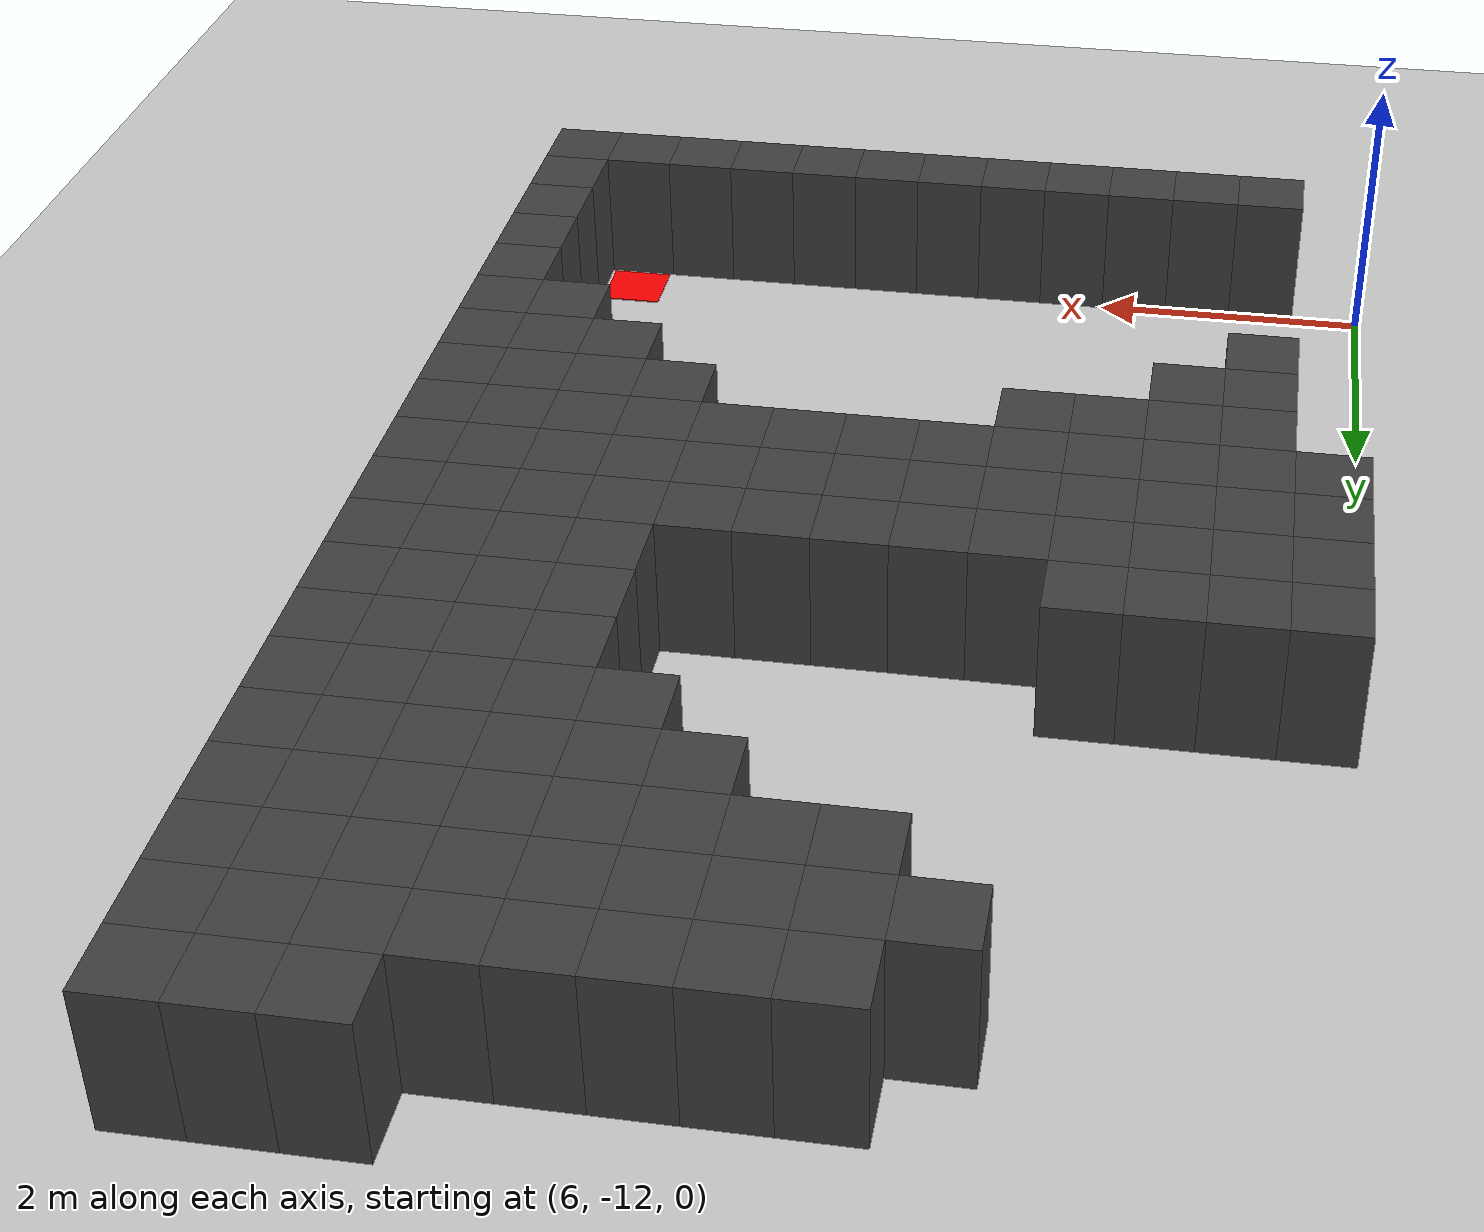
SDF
<sdf version="1.7">
 <world name="map_7981">
  <model name="ground_plane">
   <static>true</static>
   <link name="link">
    <collision name="collision">
     <geometry><plane><normal>0 0 1</normal><size>200 200</size></plane></geometry>
    </collision>
    <visual name="visual">
     <geometry><plane><normal>0 0 1</normal><size>200 200</size></plane></geometry>
     <material><ambient>0.8 0.8 0.8 1</ambient><diffuse>0.8 0.8 0.8 1</diffuse></material>
    </visual>
   </link>
  </model>
  <model name="maze_environment">
   <static>true</static>
   <link name="wall_473">
    <pose>11.250 -2.750 0.500 0 0 0</pose>
    <collision name="col"><geometry><box><size>0.5 0.5 1.0</size></box></geometry></collision>
    <visual name="vis">
     <geometry><box><size>0.5 0.5 1.0</size></box></geometry>
     <material><ambient>0.15 0.15 0.15 1</ambient><diffuse>0.25 0.25 0.25 1</diffuse></material>
    </visual>
   </link>
   <link name="wall_474">
    <pose>11.750 -2.750 0.500 0 0 0</pose>
    <collision name="col"><geometry><box><size>0.5 0.5 1.0</size></box></geometry></collision>
    <visual name="vis">
     <geometry><box><size>0.5 0.5 1.0</size></box></geometry>
     <material><ambient>0.15 0.15 0.15 1</ambient><diffuse>0.25 0.25 0.25 1</diffuse></material>
    </visual>
   </link>
   <link name="wall_475">
    <pose>12.250 -2.750 0.500 0 0 0</pose>
    <collision name="col"><geometry><box><size>0.5 0.5 1.0</size></box></geometry></collision>
    <visual name="vis">
     <geometry><box><size>0.5 0.5 1.0</size></box></geometry>
     <material><ambient>0.15 0.15 0.15 1</ambient><diffuse>0.25 0.25 0.25 1</diffuse></material>
    </visual>
   </link>
   <link name="wall_490">
    <pose>8.750 -3.250 0.500 0 0 0</pose>
    <collision name="col"><geometry><box><size>0.5 0.5 1.0</size></box></geometry></collision>
    <visual name="vis">
     <geometry><box><size>0.5 0.5 1.0</size></box></geometry>
     <material><ambient>0.15 0.15 0.15 1</ambient><diffuse>0.25 0.25 0.25 1</diffuse></material>
    </visual>
   </link>
   <link name="wall_491">
    <pose>9.250 -3.250 0.500 0 0 0</pose>
    <collision name="col"><geometry><box><size>0.5 0.5 1.0</size></box></geometry></collision>
    <visual name="vis">
     <geometry><box><size>0.5 0.5 1.0</size></box></geometry>
     <material><ambient>0.15 0.15 0.15 1</ambient><diffuse>0.25 0.25 0.25 1</diffuse></material>
    </visual>
   </link>
   <link name="wall_492">
    <pose>9.750 -3.250 0.500 0 0 0</pose>
    <collision name="col"><geometry><box><size>0.5 0.5 1.0</size></box></geometry></collision>
    <visual name="vis">
     <geometry><box><size>0.5 0.5 1.0</size></box></geometry>
     <material><ambient>0.15 0.15 0.15 1</ambient><diffuse>0.25 0.25 0.25 1</diffuse></material>
    </visual>
   </link>
   <link name="wall_493">
    <pose>10.250 -3.250 0.500 0 0 0</pose>
    <collision name="col"><geometry><box><size>0.5 0.5 1.0</size></box></geometry></collision>
    <visual name="vis">
     <geometry><box><size>0.5 0.5 1.0</size></box></geometry>
     <material><ambient>0.15 0.15 0.15 1</ambient><diffuse>0.25 0.25 0.25 1</diffuse></material>
    </visual>
   </link>
   <link name="wall_494">
    <pose>10.750 -3.250 0.500 0 0 0</pose>
    <collision name="col"><geometry><box><size>0.5 0.5 1.0</size></box></geometry></collision>
    <visual name="vis">
     <geometry><box><size>0.5 0.5 1.0</size></box></geometry>
     <material><ambient>0.15 0.15 0.15 1</ambient><diffuse>0.25 0.25 0.25 1</diffuse></material>
    </visual>
   </link>
   <link name="wall_495">
    <pose>11.250 -3.250 0.500 0 0 0</pose>
    <collision name="col"><geometry><box><size>0.5 0.5 1.0</size></box></geometry></collision>
    <visual name="vis">
     <geometry><box><size>0.5 0.5 1.0</size></box></geometry>
     <material><ambient>0.15 0.15 0.15 1</ambient><diffuse>0.25 0.25 0.25 1</diffuse></material>
    </visual>
   </link>
   <link name="wall_496">
    <pose>11.750 -3.250 0.500 0 0 0</pose>
    <collision name="col"><geometry><box><size>0.5 0.5 1.0</size></box></geometry></collision>
    <visual name="vis">
     <geometry><box><size>0.5 0.5 1.0</size></box></geometry>
     <material><ambient>0.15 0.15 0.15 1</ambient><diffuse>0.25 0.25 0.25 1</diffuse></material>
    </visual>
   </link>
   <link name="wall_497">
    <pose>12.250 -3.250 0.500 0 0 0</pose>
    <collision name="col"><geometry><box><size>0.5 0.5 1.0</size></box></geometry></collision>
    <visual name="vis">
     <geometry><box><size>0.5 0.5 1.0</size></box></geometry>
     <material><ambient>0.15 0.15 0.15 1</ambient><diffuse>0.25 0.25 0.25 1</diffuse></material>
    </visual>
   </link>
   <link name="wall_510">
    <pose>8.250 -3.750 0.500 0 0 0</pose>
    <collision name="col"><geometry><box><size>0.5 0.5 1.0</size></box></geometry></collision>
    <visual name="vis">
     <geometry><box><size>0.5 0.5 1.0</size></box></geometry>
     <material><ambient>0.15 0.15 0.15 1</ambient><diffuse>0.25 0.25 0.25 1</diffuse></material>
    </visual>
   </link>
   <link name="wall_511">
    <pose>8.750 -3.750 0.500 0 0 0</pose>
    <collision name="col"><geometry><box><size>0.5 0.5 1.0</size></box></geometry></collision>
    <visual name="vis">
     <geometry><box><size>0.5 0.5 1.0</size></box></geometry>
     <material><ambient>0.15 0.15 0.15 1</ambient><diffuse>0.25 0.25 0.25 1</diffuse></material>
    </visual>
   </link>
   <link name="wall_512">
    <pose>9.250 -3.750 0.500 0 0 0</pose>
    <collision name="col"><geometry><box><size>0.5 0.5 1.0</size></box></geometry></collision>
    <visual name="vis">
     <geometry><box><size>0.5 0.5 1.0</size></box></geometry>
     <material><ambient>0.15 0.15 0.15 1</ambient><diffuse>0.25 0.25 0.25 1</diffuse></material>
    </visual>
   </link>
   <link name="wall_513">
    <pose>9.750 -3.750 0.500 0 0 0</pose>
    <collision name="col"><geometry><box><size>0.5 0.5 1.0</size></box></geometry></collision>
    <visual name="vis">
     <geometry><box><size>0.5 0.5 1.0</size></box></geometry>
     <material><ambient>0.15 0.15 0.15 1</ambient><diffuse>0.25 0.25 0.25 1</diffuse></material>
    </visual>
   </link>
   <link name="wall_514">
    <pose>10.250 -3.750 0.500 0 0 0</pose>
    <collision name="col"><geometry><box><size>0.5 0.5 1.0</size></box></geometry></collision>
    <visual name="vis">
     <geometry><box><size>0.5 0.5 1.0</size></box></geometry>
     <material><ambient>0.15 0.15 0.15 1</ambient><diffuse>0.25 0.25 0.25 1</diffuse></material>
    </visual>
   </link>
   <link name="wall_515">
    <pose>10.750 -3.750 0.500 0 0 0</pose>
    <collision name="col"><geometry><box><size>0.5 0.5 1.0</size></box></geometry></collision>
    <visual name="vis">
     <geometry><box><size>0.5 0.5 1.0</size></box></geometry>
     <material><ambient>0.15 0.15 0.15 1</ambient><diffuse>0.25 0.25 0.25 1</diffuse></material>
    </visual>
   </link>
   <link name="wall_516">
    <pose>11.250 -3.750 0.500 0 0 0</pose>
    <collision name="col"><geometry><box><size>0.5 0.5 1.0</size></box></geometry></collision>
    <visual name="vis">
     <geometry><box><size>0.5 0.5 1.0</size></box></geometry>
     <material><ambient>0.15 0.15 0.15 1</ambient><diffuse>0.25 0.25 0.25 1</diffuse></material>
    </visual>
   </link>
   <link name="wall_517">
    <pose>11.750 -3.750 0.500 0 0 0</pose>
    <collision name="col"><geometry><box><size>0.5 0.5 1.0</size></box></geometry></collision>
    <visual name="vis">
     <geometry><box><size>0.5 0.5 1.0</size></box></geometry>
     <material><ambient>0.15 0.15 0.15 1</ambient><diffuse>0.25 0.25 0.25 1</diffuse></material>
    </visual>
   </link>
   <link name="wall_518">
    <pose>12.250 -3.750 0.500 0 0 0</pose>
    <collision name="col"><geometry><box><size>0.5 0.5 1.0</size></box></geometry></collision>
    <visual name="vis">
     <geometry><box><size>0.5 0.5 1.0</size></box></geometry>
     <material><ambient>0.15 0.15 0.15 1</ambient><diffuse>0.25 0.25 0.25 1</diffuse></material>
    </visual>
   </link>
   <link name="wall_528">
    <pose>8.750 -4.250 0.500 0 0 0</pose>
    <collision name="col"><geometry><box><size>0.5 0.5 1.0</size></box></geometry></collision>
    <visual name="vis">
     <geometry><box><size>0.5 0.5 1.0</size></box></geometry>
     <material><ambient>0.15 0.15 0.15 1</ambient><diffuse>0.25 0.25 0.25 1</diffuse></material>
    </visual>
   </link>
   <link name="wall_529">
    <pose>9.250 -4.250 0.500 0 0 0</pose>
    <collision name="col"><geometry><box><size>0.5 0.5 1.0</size></box></geometry></collision>
    <visual name="vis">
     <geometry><box><size>0.5 0.5 1.0</size></box></geometry>
     <material><ambient>0.15 0.15 0.15 1</ambient><diffuse>0.25 0.25 0.25 1</diffuse></material>
    </visual>
   </link>
   <link name="wall_530">
    <pose>9.750 -4.250 0.500 0 0 0</pose>
    <collision name="col"><geometry><box><size>0.5 0.5 1.0</size></box></geometry></collision>
    <visual name="vis">
     <geometry><box><size>0.5 0.5 1.0</size></box></geometry>
     <material><ambient>0.15 0.15 0.15 1</ambient><diffuse>0.25 0.25 0.25 1</diffuse></material>
    </visual>
   </link>
   <link name="wall_531">
    <pose>10.250 -4.250 0.500 0 0 0</pose>
    <collision name="col"><geometry><box><size>0.5 0.5 1.0</size></box></geometry></collision>
    <visual name="vis">
     <geometry><box><size>0.5 0.5 1.0</size></box></geometry>
     <material><ambient>0.15 0.15 0.15 1</ambient><diffuse>0.25 0.25 0.25 1</diffuse></material>
    </visual>
   </link>
   <link name="wall_532">
    <pose>10.750 -4.250 0.500 0 0 0</pose>
    <collision name="col"><geometry><box><size>0.5 0.5 1.0</size></box></geometry></collision>
    <visual name="vis">
     <geometry><box><size>0.5 0.5 1.0</size></box></geometry>
     <material><ambient>0.15 0.15 0.15 1</ambient><diffuse>0.25 0.25 0.25 1</diffuse></material>
    </visual>
   </link>
   <link name="wall_533">
    <pose>11.250 -4.250 0.500 0 0 0</pose>
    <collision name="col"><geometry><box><size>0.5 0.5 1.0</size></box></geometry></collision>
    <visual name="vis">
     <geometry><box><size>0.5 0.5 1.0</size></box></geometry>
     <material><ambient>0.15 0.15 0.15 1</ambient><diffuse>0.25 0.25 0.25 1</diffuse></material>
    </visual>
   </link>
   <link name="wall_534">
    <pose>11.750 -4.250 0.500 0 0 0</pose>
    <collision name="col"><geometry><box><size>0.5 0.5 1.0</size></box></geometry></collision>
    <visual name="vis">
     <geometry><box><size>0.5 0.5 1.0</size></box></geometry>
     <material><ambient>0.15 0.15 0.15 1</ambient><diffuse>0.25 0.25 0.25 1</diffuse></material>
    </visual>
   </link>
   <link name="wall_535">
    <pose>12.250 -4.250 0.500 0 0 0</pose>
    <collision name="col"><geometry><box><size>0.5 0.5 1.0</size></box></geometry></collision>
    <visual name="vis">
     <geometry><box><size>0.5 0.5 1.0</size></box></geometry>
     <material><ambient>0.15 0.15 0.15 1</ambient><diffuse>0.25 0.25 0.25 1</diffuse></material>
    </visual>
   </link>
   <link name="wall_543">
    <pose>9.750 -4.750 0.500 0 0 0</pose>
    <collision name="col"><geometry><box><size>0.5 0.5 1.0</size></box></geometry></collision>
    <visual name="vis">
     <geometry><box><size>0.5 0.5 1.0</size></box></geometry>
     <material><ambient>0.15 0.15 0.15 1</ambient><diffuse>0.25 0.25 0.25 1</diffuse></material>
    </visual>
   </link>
   <link name="wall_544">
    <pose>10.250 -4.750 0.500 0 0 0</pose>
    <collision name="col"><geometry><box><size>0.5 0.5 1.0</size></box></geometry></collision>
    <visual name="vis">
     <geometry><box><size>0.5 0.5 1.0</size></box></geometry>
     <material><ambient>0.15 0.15 0.15 1</ambient><diffuse>0.25 0.25 0.25 1</diffuse></material>
    </visual>
   </link>
   <link name="wall_545">
    <pose>10.750 -4.750 0.500 0 0 0</pose>
    <collision name="col"><geometry><box><size>0.5 0.5 1.0</size></box></geometry></collision>
    <visual name="vis">
     <geometry><box><size>0.5 0.5 1.0</size></box></geometry>
     <material><ambient>0.15 0.15 0.15 1</ambient><diffuse>0.25 0.25 0.25 1</diffuse></material>
    </visual>
   </link>
   <link name="wall_546">
    <pose>11.250 -4.750 0.500 0 0 0</pose>
    <collision name="col"><geometry><box><size>0.5 0.5 1.0</size></box></geometry></collision>
    <visual name="vis">
     <geometry><box><size>0.5 0.5 1.0</size></box></geometry>
     <material><ambient>0.15 0.15 0.15 1</ambient><diffuse>0.25 0.25 0.25 1</diffuse></material>
    </visual>
   </link>
   <link name="wall_547">
    <pose>11.750 -4.750 0.500 0 0 0</pose>
    <collision name="col"><geometry><box><size>0.5 0.5 1.0</size></box></geometry></collision>
    <visual name="vis">
     <geometry><box><size>0.5 0.5 1.0</size></box></geometry>
     <material><ambient>0.15 0.15 0.15 1</ambient><diffuse>0.25 0.25 0.25 1</diffuse></material>
    </visual>
   </link>
   <link name="wall_548">
    <pose>12.250 -4.750 0.500 0 0 0</pose>
    <collision name="col"><geometry><box><size>0.5 0.5 1.0</size></box></geometry></collision>
    <visual name="vis">
     <geometry><box><size>0.5 0.5 1.0</size></box></geometry>
     <material><ambient>0.15 0.15 0.15 1</ambient><diffuse>0.25 0.25 0.25 1</diffuse></material>
    </visual>
   </link>
   <link name="wall_558">
    <pose>10.250 -5.250 0.500 0 0 0</pose>
    <collision name="col"><geometry><box><size>0.5 0.5 1.0</size></box></geometry></collision>
    <visual name="vis">
     <geometry><box><size>0.5 0.5 1.0</size></box></geometry>
     <material><ambient>0.15 0.15 0.15 1</ambient><diffuse>0.25 0.25 0.25 1</diffuse></material>
    </visual>
   </link>
   <link name="wall_559">
    <pose>10.750 -5.250 0.500 0 0 0</pose>
    <collision name="col"><geometry><box><size>0.5 0.5 1.0</size></box></geometry></collision>
    <visual name="vis">
     <geometry><box><size>0.5 0.5 1.0</size></box></geometry>
     <material><ambient>0.15 0.15 0.15 1</ambient><diffuse>0.25 0.25 0.25 1</diffuse></material>
    </visual>
   </link>
   <link name="wall_560">
    <pose>11.250 -5.250 0.500 0 0 0</pose>
    <collision name="col"><geometry><box><size>0.5 0.5 1.0</size></box></geometry></collision>
    <visual name="vis">
     <geometry><box><size>0.5 0.5 1.0</size></box></geometry>
     <material><ambient>0.15 0.15 0.15 1</ambient><diffuse>0.25 0.25 0.25 1</diffuse></material>
    </visual>
   </link>
   <link name="wall_561">
    <pose>11.750 -5.250 0.500 0 0 0</pose>
    <collision name="col"><geometry><box><size>0.5 0.5 1.0</size></box></geometry></collision>
    <visual name="vis">
     <geometry><box><size>0.5 0.5 1.0</size></box></geometry>
     <material><ambient>0.15 0.15 0.15 1</ambient><diffuse>0.25 0.25 0.25 1</diffuse></material>
    </visual>
   </link>
   <link name="wall_562">
    <pose>12.250 -5.250 0.500 0 0 0</pose>
    <collision name="col"><geometry><box><size>0.5 0.5 1.0</size></box></geometry></collision>
    <visual name="vis">
     <geometry><box><size>0.5 0.5 1.0</size></box></geometry>
     <material><ambient>0.15 0.15 0.15 1</ambient><diffuse>0.25 0.25 0.25 1</diffuse></material>
    </visual>
   </link>
   <link name="wall_575">
    <pose>10.750 -5.750 0.500 0 0 0</pose>
    <collision name="col"><geometry><box><size>0.5 0.5 1.0</size></box></geometry></collision>
    <visual name="vis">
     <geometry><box><size>0.5 0.5 1.0</size></box></geometry>
     <material><ambient>0.15 0.15 0.15 1</ambient><diffuse>0.25 0.25 0.25 1</diffuse></material>
    </visual>
   </link>
   <link name="wall_576">
    <pose>11.250 -5.750 0.500 0 0 0</pose>
    <collision name="col"><geometry><box><size>0.5 0.5 1.0</size></box></geometry></collision>
    <visual name="vis">
     <geometry><box><size>0.5 0.5 1.0</size></box></geometry>
     <material><ambient>0.15 0.15 0.15 1</ambient><diffuse>0.25 0.25 0.25 1</diffuse></material>
    </visual>
   </link>
   <link name="wall_577">
    <pose>11.750 -5.750 0.500 0 0 0</pose>
    <collision name="col"><geometry><box><size>0.5 0.5 1.0</size></box></geometry></collision>
    <visual name="vis">
     <geometry><box><size>0.5 0.5 1.0</size></box></geometry>
     <material><ambient>0.15 0.15 0.15 1</ambient><diffuse>0.25 0.25 0.25 1</diffuse></material>
    </visual>
   </link>
   <link name="wall_578">
    <pose>12.250 -5.750 0.500 0 0 0</pose>
    <collision name="col"><geometry><box><size>0.5 0.5 1.0</size></box></geometry></collision>
    <visual name="vis">
     <geometry><box><size>0.5 0.5 1.0</size></box></geometry>
     <material><ambient>0.15 0.15 0.15 1</ambient><diffuse>0.25 0.25 0.25 1</diffuse></material>
    </visual>
   </link>
   <link name="wall_596">
    <pose>10.750 -6.250 0.500 0 0 0</pose>
    <collision name="col"><geometry><box><size>0.5 0.5 1.0</size></box></geometry></collision>
    <visual name="vis">
     <geometry><box><size>0.5 0.5 1.0</size></box></geometry>
     <material><ambient>0.15 0.15 0.15 1</ambient><diffuse>0.25 0.25 0.25 1</diffuse></material>
    </visual>
   </link>
   <link name="wall_597">
    <pose>11.250 -6.250 0.500 0 0 0</pose>
    <collision name="col"><geometry><box><size>0.5 0.5 1.0</size></box></geometry></collision>
    <visual name="vis">
     <geometry><box><size>0.5 0.5 1.0</size></box></geometry>
     <material><ambient>0.15 0.15 0.15 1</ambient><diffuse>0.25 0.25 0.25 1</diffuse></material>
    </visual>
   </link>
   <link name="wall_598">
    <pose>11.750 -6.250 0.500 0 0 0</pose>
    <collision name="col"><geometry><box><size>0.5 0.5 1.0</size></box></geometry></collision>
    <visual name="vis">
     <geometry><box><size>0.5 0.5 1.0</size></box></geometry>
     <material><ambient>0.15 0.15 0.15 1</ambient><diffuse>0.25 0.25 0.25 1</diffuse></material>
    </visual>
   </link>
   <link name="wall_599">
    <pose>12.250 -6.250 0.500 0 0 0</pose>
    <collision name="col"><geometry><box><size>0.5 0.5 1.0</size></box></geometry></collision>
    <visual name="vis">
     <geometry><box><size>0.5 0.5 1.0</size></box></geometry>
     <material><ambient>0.15 0.15 0.15 1</ambient><diffuse>0.25 0.25 0.25 1</diffuse></material>
    </visual>
   </link>
   <link name="wall_621">
    <pose>6.250 -6.750 0.500 0 0 0</pose>
    <collision name="col"><geometry><box><size>0.5 0.5 1.0</size></box></geometry></collision>
    <visual name="vis">
     <geometry><box><size>0.5 0.5 1.0</size></box></geometry>
     <material><ambient>0.15 0.15 0.15 1</ambient><diffuse>0.25 0.25 0.25 1</diffuse></material>
    </visual>
   </link>
   <link name="wall_622">
    <pose>6.750 -6.750 0.500 0 0 0</pose>
    <collision name="col"><geometry><box><size>0.5 0.5 1.0</size></box></geometry></collision>
    <visual name="vis">
     <geometry><box><size>0.5 0.5 1.0</size></box></geometry>
     <material><ambient>0.15 0.15 0.15 1</ambient><diffuse>0.25 0.25 0.25 1</diffuse></material>
    </visual>
   </link>
   <link name="wall_623">
    <pose>7.250 -6.750 0.500 0 0 0</pose>
    <collision name="col"><geometry><box><size>0.5 0.5 1.0</size></box></geometry></collision>
    <visual name="vis">
     <geometry><box><size>0.5 0.5 1.0</size></box></geometry>
     <material><ambient>0.15 0.15 0.15 1</ambient><diffuse>0.25 0.25 0.25 1</diffuse></material>
    </visual>
   </link>
   <link name="wall_624">
    <pose>7.750 -6.750 0.500 0 0 0</pose>
    <collision name="col"><geometry><box><size>0.5 0.5 1.0</size></box></geometry></collision>
    <visual name="vis">
     <geometry><box><size>0.5 0.5 1.0</size></box></geometry>
     <material><ambient>0.15 0.15 0.15 1</ambient><diffuse>0.25 0.25 0.25 1</diffuse></material>
    </visual>
   </link>
   <link name="wall_625">
    <pose>10.750 -6.750 0.500 0 0 0</pose>
    <collision name="col"><geometry><box><size>0.5 0.5 1.0</size></box></geometry></collision>
    <visual name="vis">
     <geometry><box><size>0.5 0.5 1.0</size></box></geometry>
     <material><ambient>0.15 0.15 0.15 1</ambient><diffuse>0.25 0.25 0.25 1</diffuse></material>
    </visual>
   </link>
   <link name="wall_626">
    <pose>11.250 -6.750 0.500 0 0 0</pose>
    <collision name="col"><geometry><box><size>0.5 0.5 1.0</size></box></geometry></collision>
    <visual name="vis">
     <geometry><box><size>0.5 0.5 1.0</size></box></geometry>
     <material><ambient>0.15 0.15 0.15 1</ambient><diffuse>0.25 0.25 0.25 1</diffuse></material>
    </visual>
   </link>
   <link name="wall_627">
    <pose>11.750 -6.750 0.500 0 0 0</pose>
    <collision name="col"><geometry><box><size>0.5 0.5 1.0</size></box></geometry></collision>
    <visual name="vis">
     <geometry><box><size>0.5 0.5 1.0</size></box></geometry>
     <material><ambient>0.15 0.15 0.15 1</ambient><diffuse>0.25 0.25 0.25 1</diffuse></material>
    </visual>
   </link>
   <link name="wall_628">
    <pose>12.250 -6.750 0.500 0 0 0</pose>
    <collision name="col"><geometry><box><size>0.5 0.5 1.0</size></box></geometry></collision>
    <visual name="vis">
     <geometry><box><size>0.5 0.5 1.0</size></box></geometry>
     <material><ambient>0.15 0.15 0.15 1</ambient><diffuse>0.25 0.25 0.25 1</diffuse></material>
    </visual>
   </link>
   <link name="wall_647">
    <pose>6.250 -7.250 0.500 0 0 0</pose>
    <collision name="col"><geometry><box><size>0.5 0.5 1.0</size></box></geometry></collision>
    <visual name="vis">
     <geometry><box><size>0.5 0.5 1.0</size></box></geometry>
     <material><ambient>0.15 0.15 0.15 1</ambient><diffuse>0.25 0.25 0.25 1</diffuse></material>
    </visual>
   </link>
   <link name="wall_648">
    <pose>6.750 -7.250 0.500 0 0 0</pose>
    <collision name="col"><geometry><box><size>0.5 0.5 1.0</size></box></geometry></collision>
    <visual name="vis">
     <geometry><box><size>0.5 0.5 1.0</size></box></geometry>
     <material><ambient>0.15 0.15 0.15 1</ambient><diffuse>0.25 0.25 0.25 1</diffuse></material>
    </visual>
   </link>
   <link name="wall_649">
    <pose>7.250 -7.250 0.500 0 0 0</pose>
    <collision name="col"><geometry><box><size>0.5 0.5 1.0</size></box></geometry></collision>
    <visual name="vis">
     <geometry><box><size>0.5 0.5 1.0</size></box></geometry>
     <material><ambient>0.15 0.15 0.15 1</ambient><diffuse>0.25 0.25 0.25 1</diffuse></material>
    </visual>
   </link>
   <link name="wall_650">
    <pose>7.750 -7.250 0.500 0 0 0</pose>
    <collision name="col"><geometry><box><size>0.5 0.5 1.0</size></box></geometry></collision>
    <visual name="vis">
     <geometry><box><size>0.5 0.5 1.0</size></box></geometry>
     <material><ambient>0.15 0.15 0.15 1</ambient><diffuse>0.25 0.25 0.25 1</diffuse></material>
    </visual>
   </link>
   <link name="wall_651">
    <pose>8.250 -7.250 0.500 0 0 0</pose>
    <collision name="col"><geometry><box><size>0.5 0.5 1.0</size></box></geometry></collision>
    <visual name="vis">
     <geometry><box><size>0.5 0.5 1.0</size></box></geometry>
     <material><ambient>0.15 0.15 0.15 1</ambient><diffuse>0.25 0.25 0.25 1</diffuse></material>
    </visual>
   </link>
   <link name="wall_652">
    <pose>8.750 -7.250 0.500 0 0 0</pose>
    <collision name="col"><geometry><box><size>0.5 0.5 1.0</size></box></geometry></collision>
    <visual name="vis">
     <geometry><box><size>0.5 0.5 1.0</size></box></geometry>
     <material><ambient>0.15 0.15 0.15 1</ambient><diffuse>0.25 0.25 0.25 1</diffuse></material>
    </visual>
   </link>
   <link name="wall_653">
    <pose>9.250 -7.250 0.500 0 0 0</pose>
    <collision name="col"><geometry><box><size>0.5 0.5 1.0</size></box></geometry></collision>
    <visual name="vis">
     <geometry><box><size>0.5 0.5 1.0</size></box></geometry>
     <material><ambient>0.15 0.15 0.15 1</ambient><diffuse>0.25 0.25 0.25 1</diffuse></material>
    </visual>
   </link>
   <link name="wall_654">
    <pose>9.750 -7.250 0.500 0 0 0</pose>
    <collision name="col"><geometry><box><size>0.5 0.5 1.0</size></box></geometry></collision>
    <visual name="vis">
     <geometry><box><size>0.5 0.5 1.0</size></box></geometry>
     <material><ambient>0.15 0.15 0.15 1</ambient><diffuse>0.25 0.25 0.25 1</diffuse></material>
    </visual>
   </link>
   <link name="wall_655">
    <pose>10.250 -7.250 0.500 0 0 0</pose>
    <collision name="col"><geometry><box><size>0.5 0.5 1.0</size></box></geometry></collision>
    <visual name="vis">
     <geometry><box><size>0.5 0.5 1.0</size></box></geometry>
     <material><ambient>0.15 0.15 0.15 1</ambient><diffuse>0.25 0.25 0.25 1</diffuse></material>
    </visual>
   </link>
   <link name="wall_656">
    <pose>10.750 -7.250 0.500 0 0 0</pose>
    <collision name="col"><geometry><box><size>0.5 0.5 1.0</size></box></geometry></collision>
    <visual name="vis">
     <geometry><box><size>0.5 0.5 1.0</size></box></geometry>
     <material><ambient>0.15 0.15 0.15 1</ambient><diffuse>0.25 0.25 0.25 1</diffuse></material>
    </visual>
   </link>
   <link name="wall_657">
    <pose>11.250 -7.250 0.500 0 0 0</pose>
    <collision name="col"><geometry><box><size>0.5 0.5 1.0</size></box></geometry></collision>
    <visual name="vis">
     <geometry><box><size>0.5 0.5 1.0</size></box></geometry>
     <material><ambient>0.15 0.15 0.15 1</ambient><diffuse>0.25 0.25 0.25 1</diffuse></material>
    </visual>
   </link>
   <link name="wall_658">
    <pose>11.750 -7.250 0.500 0 0 0</pose>
    <collision name="col"><geometry><box><size>0.5 0.5 1.0</size></box></geometry></collision>
    <visual name="vis">
     <geometry><box><size>0.5 0.5 1.0</size></box></geometry>
     <material><ambient>0.15 0.15 0.15 1</ambient><diffuse>0.25 0.25 0.25 1</diffuse></material>
    </visual>
   </link>
   <link name="wall_659">
    <pose>12.250 -7.250 0.500 0 0 0</pose>
    <collision name="col"><geometry><box><size>0.5 0.5 1.0</size></box></geometry></collision>
    <visual name="vis">
     <geometry><box><size>0.5 0.5 1.0</size></box></geometry>
     <material><ambient>0.15 0.15 0.15 1</ambient><diffuse>0.25 0.25 0.25 1</diffuse></material>
    </visual>
   </link>
   <link name="wall_678">
    <pose>6.250 -7.750 0.500 0 0 0</pose>
    <collision name="col"><geometry><box><size>0.5 0.5 1.0</size></box></geometry></collision>
    <visual name="vis">
     <geometry><box><size>0.5 0.5 1.0</size></box></geometry>
     <material><ambient>0.15 0.15 0.15 1</ambient><diffuse>0.25 0.25 0.25 1</diffuse></material>
    </visual>
   </link>
   <link name="wall_679">
    <pose>6.750 -7.750 0.500 0 0 0</pose>
    <collision name="col"><geometry><box><size>0.5 0.5 1.0</size></box></geometry></collision>
    <visual name="vis">
     <geometry><box><size>0.5 0.5 1.0</size></box></geometry>
     <material><ambient>0.15 0.15 0.15 1</ambient><diffuse>0.25 0.25 0.25 1</diffuse></material>
    </visual>
   </link>
   <link name="wall_680">
    <pose>7.250 -7.750 0.500 0 0 0</pose>
    <collision name="col"><geometry><box><size>0.5 0.5 1.0</size></box></geometry></collision>
    <visual name="vis">
     <geometry><box><size>0.5 0.5 1.0</size></box></geometry>
     <material><ambient>0.15 0.15 0.15 1</ambient><diffuse>0.25 0.25 0.25 1</diffuse></material>
    </visual>
   </link>
   <link name="wall_681">
    <pose>7.750 -7.750 0.500 0 0 0</pose>
    <collision name="col"><geometry><box><size>0.5 0.5 1.0</size></box></geometry></collision>
    <visual name="vis">
     <geometry><box><size>0.5 0.5 1.0</size></box></geometry>
     <material><ambient>0.15 0.15 0.15 1</ambient><diffuse>0.25 0.25 0.25 1</diffuse></material>
    </visual>
   </link>
   <link name="wall_682">
    <pose>8.250 -7.750 0.500 0 0 0</pose>
    <collision name="col"><geometry><box><size>0.5 0.5 1.0</size></box></geometry></collision>
    <visual name="vis">
     <geometry><box><size>0.5 0.5 1.0</size></box></geometry>
     <material><ambient>0.15 0.15 0.15 1</ambient><diffuse>0.25 0.25 0.25 1</diffuse></material>
    </visual>
   </link>
   <link name="wall_683">
    <pose>8.750 -7.750 0.500 0 0 0</pose>
    <collision name="col"><geometry><box><size>0.5 0.5 1.0</size></box></geometry></collision>
    <visual name="vis">
     <geometry><box><size>0.5 0.5 1.0</size></box></geometry>
     <material><ambient>0.15 0.15 0.15 1</ambient><diffuse>0.25 0.25 0.25 1</diffuse></material>
    </visual>
   </link>
   <link name="wall_684">
    <pose>9.250 -7.750 0.500 0 0 0</pose>
    <collision name="col"><geometry><box><size>0.5 0.5 1.0</size></box></geometry></collision>
    <visual name="vis">
     <geometry><box><size>0.5 0.5 1.0</size></box></geometry>
     <material><ambient>0.15 0.15 0.15 1</ambient><diffuse>0.25 0.25 0.25 1</diffuse></material>
    </visual>
   </link>
   <link name="wall_685">
    <pose>9.750 -7.750 0.500 0 0 0</pose>
    <collision name="col"><geometry><box><size>0.5 0.5 1.0</size></box></geometry></collision>
    <visual name="vis">
     <geometry><box><size>0.5 0.5 1.0</size></box></geometry>
     <material><ambient>0.15 0.15 0.15 1</ambient><diffuse>0.25 0.25 0.25 1</diffuse></material>
    </visual>
   </link>
   <link name="wall_686">
    <pose>10.250 -7.750 0.500 0 0 0</pose>
    <collision name="col"><geometry><box><size>0.5 0.5 1.0</size></box></geometry></collision>
    <visual name="vis">
     <geometry><box><size>0.5 0.5 1.0</size></box></geometry>
     <material><ambient>0.15 0.15 0.15 1</ambient><diffuse>0.25 0.25 0.25 1</diffuse></material>
    </visual>
   </link>
   <link name="wall_687">
    <pose>10.750 -7.750 0.500 0 0 0</pose>
    <collision name="col"><geometry><box><size>0.5 0.5 1.0</size></box></geometry></collision>
    <visual name="vis">
     <geometry><box><size>0.5 0.5 1.0</size></box></geometry>
     <material><ambient>0.15 0.15 0.15 1</ambient><diffuse>0.25 0.25 0.25 1</diffuse></material>
    </visual>
   </link>
   <link name="wall_688">
    <pose>11.250 -7.750 0.500 0 0 0</pose>
    <collision name="col"><geometry><box><size>0.5 0.5 1.0</size></box></geometry></collision>
    <visual name="vis">
     <geometry><box><size>0.5 0.5 1.0</size></box></geometry>
     <material><ambient>0.15 0.15 0.15 1</ambient><diffuse>0.25 0.25 0.25 1</diffuse></material>
    </visual>
   </link>
   <link name="wall_689">
    <pose>11.750 -7.750 0.500 0 0 0</pose>
    <collision name="col"><geometry><box><size>0.5 0.5 1.0</size></box></geometry></collision>
    <visual name="vis">
     <geometry><box><size>0.5 0.5 1.0</size></box></geometry>
     <material><ambient>0.15 0.15 0.15 1</ambient><diffuse>0.25 0.25 0.25 1</diffuse></material>
    </visual>
   </link>
   <link name="wall_690">
    <pose>12.250 -7.750 0.500 0 0 0</pose>
    <collision name="col"><geometry><box><size>0.5 0.5 1.0</size></box></geometry></collision>
    <visual name="vis">
     <geometry><box><size>0.5 0.5 1.0</size></box></geometry>
     <material><ambient>0.15 0.15 0.15 1</ambient><diffuse>0.25 0.25 0.25 1</diffuse></material>
    </visual>
   </link>
   <link name="wall_705">
    <pose>6.250 -8.250 0.500 0 0 0</pose>
    <collision name="col"><geometry><box><size>0.5 0.5 1.0</size></box></geometry></collision>
    <visual name="vis">
     <geometry><box><size>0.5 0.5 1.0</size></box></geometry>
     <material><ambient>0.15 0.15 0.15 1</ambient><diffuse>0.25 0.25 0.25 1</diffuse></material>
    </visual>
   </link>
   <link name="wall_706">
    <pose>6.750 -8.250 0.500 0 0 0</pose>
    <collision name="col"><geometry><box><size>0.5 0.5 1.0</size></box></geometry></collision>
    <visual name="vis">
     <geometry><box><size>0.5 0.5 1.0</size></box></geometry>
     <material><ambient>0.15 0.15 0.15 1</ambient><diffuse>0.25 0.25 0.25 1</diffuse></material>
    </visual>
   </link>
   <link name="wall_707">
    <pose>7.250 -8.250 0.500 0 0 0</pose>
    <collision name="col"><geometry><box><size>0.5 0.5 1.0</size></box></geometry></collision>
    <visual name="vis">
     <geometry><box><size>0.5 0.5 1.0</size></box></geometry>
     <material><ambient>0.15 0.15 0.15 1</ambient><diffuse>0.25 0.25 0.25 1</diffuse></material>
    </visual>
   </link>
   <link name="wall_708">
    <pose>7.750 -8.250 0.500 0 0 0</pose>
    <collision name="col"><geometry><box><size>0.5 0.5 1.0</size></box></geometry></collision>
    <visual name="vis">
     <geometry><box><size>0.5 0.5 1.0</size></box></geometry>
     <material><ambient>0.15 0.15 0.15 1</ambient><diffuse>0.25 0.25 0.25 1</diffuse></material>
    </visual>
   </link>
   <link name="wall_709">
    <pose>8.250 -8.250 0.500 0 0 0</pose>
    <collision name="col"><geometry><box><size>0.5 0.5 1.0</size></box></geometry></collision>
    <visual name="vis">
     <geometry><box><size>0.5 0.5 1.0</size></box></geometry>
     <material><ambient>0.15 0.15 0.15 1</ambient><diffuse>0.25 0.25 0.25 1</diffuse></material>
    </visual>
   </link>
   <link name="wall_710">
    <pose>8.750 -8.250 0.500 0 0 0</pose>
    <collision name="col"><geometry><box><size>0.5 0.5 1.0</size></box></geometry></collision>
    <visual name="vis">
     <geometry><box><size>0.5 0.5 1.0</size></box></geometry>
     <material><ambient>0.15 0.15 0.15 1</ambient><diffuse>0.25 0.25 0.25 1</diffuse></material>
    </visual>
   </link>
   <link name="wall_711">
    <pose>9.250 -8.250 0.500 0 0 0</pose>
    <collision name="col"><geometry><box><size>0.5 0.5 1.0</size></box></geometry></collision>
    <visual name="vis">
     <geometry><box><size>0.5 0.5 1.0</size></box></geometry>
     <material><ambient>0.15 0.15 0.15 1</ambient><diffuse>0.25 0.25 0.25 1</diffuse></material>
    </visual>
   </link>
   <link name="wall_712">
    <pose>9.750 -8.250 0.500 0 0 0</pose>
    <collision name="col"><geometry><box><size>0.5 0.5 1.0</size></box></geometry></collision>
    <visual name="vis">
     <geometry><box><size>0.5 0.5 1.0</size></box></geometry>
     <material><ambient>0.15 0.15 0.15 1</ambient><diffuse>0.25 0.25 0.25 1</diffuse></material>
    </visual>
   </link>
   <link name="wall_713">
    <pose>10.250 -8.250 0.500 0 0 0</pose>
    <collision name="col"><geometry><box><size>0.5 0.5 1.0</size></box></geometry></collision>
    <visual name="vis">
     <geometry><box><size>0.5 0.5 1.0</size></box></geometry>
     <material><ambient>0.15 0.15 0.15 1</ambient><diffuse>0.25 0.25 0.25 1</diffuse></material>
    </visual>
   </link>
   <link name="wall_714">
    <pose>10.750 -8.250 0.500 0 0 0</pose>
    <collision name="col"><geometry><box><size>0.5 0.5 1.0</size></box></geometry></collision>
    <visual name="vis">
     <geometry><box><size>0.5 0.5 1.0</size></box></geometry>
     <material><ambient>0.15 0.15 0.15 1</ambient><diffuse>0.25 0.25 0.25 1</diffuse></material>
    </visual>
   </link>
   <link name="wall_715">
    <pose>11.250 -8.250 0.500 0 0 0</pose>
    <collision name="col"><geometry><box><size>0.5 0.5 1.0</size></box></geometry></collision>
    <visual name="vis">
     <geometry><box><size>0.5 0.5 1.0</size></box></geometry>
     <material><ambient>0.15 0.15 0.15 1</ambient><diffuse>0.25 0.25 0.25 1</diffuse></material>
    </visual>
   </link>
   <link name="wall_716">
    <pose>11.750 -8.250 0.500 0 0 0</pose>
    <collision name="col"><geometry><box><size>0.5 0.5 1.0</size></box></geometry></collision>
    <visual name="vis">
     <geometry><box><size>0.5 0.5 1.0</size></box></geometry>
     <material><ambient>0.15 0.15 0.15 1</ambient><diffuse>0.25 0.25 0.25 1</diffuse></material>
    </visual>
   </link>
   <link name="wall_717">
    <pose>12.250 -8.250 0.500 0 0 0</pose>
    <collision name="col"><geometry><box><size>0.5 0.5 1.0</size></box></geometry></collision>
    <visual name="vis">
     <geometry><box><size>0.5 0.5 1.0</size></box></geometry>
     <material><ambient>0.15 0.15 0.15 1</ambient><diffuse>0.25 0.25 0.25 1</diffuse></material>
    </visual>
   </link>
   <link name="wall_730">
    <pose>6.750 -8.750 0.500 0 0 0</pose>
    <collision name="col"><geometry><box><size>0.5 0.5 1.0</size></box></geometry></collision>
    <visual name="vis">
     <geometry><box><size>0.5 0.5 1.0</size></box></geometry>
     <material><ambient>0.15 0.15 0.15 1</ambient><diffuse>0.25 0.25 0.25 1</diffuse></material>
    </visual>
   </link>
   <link name="wall_731">
    <pose>7.250 -8.750 0.500 0 0 0</pose>
    <collision name="col"><geometry><box><size>0.5 0.5 1.0</size></box></geometry></collision>
    <visual name="vis">
     <geometry><box><size>0.5 0.5 1.0</size></box></geometry>
     <material><ambient>0.15 0.15 0.15 1</ambient><diffuse>0.25 0.25 0.25 1</diffuse></material>
    </visual>
   </link>
   <link name="wall_732">
    <pose>7.750 -8.750 0.500 0 0 0</pose>
    <collision name="col"><geometry><box><size>0.5 0.5 1.0</size></box></geometry></collision>
    <visual name="vis">
     <geometry><box><size>0.5 0.5 1.0</size></box></geometry>
     <material><ambient>0.15 0.15 0.15 1</ambient><diffuse>0.25 0.25 0.25 1</diffuse></material>
    </visual>
   </link>
   <link name="wall_733">
    <pose>8.250 -8.750 0.500 0 0 0</pose>
    <collision name="col"><geometry><box><size>0.5 0.5 1.0</size></box></geometry></collision>
    <visual name="vis">
     <geometry><box><size>0.5 0.5 1.0</size></box></geometry>
     <material><ambient>0.15 0.15 0.15 1</ambient><diffuse>0.25 0.25 0.25 1</diffuse></material>
    </visual>
   </link>
   <link name="wall_734">
    <pose>10.750 -8.750 0.500 0 0 0</pose>
    <collision name="col"><geometry><box><size>0.5 0.5 1.0</size></box></geometry></collision>
    <visual name="vis">
     <geometry><box><size>0.5 0.5 1.0</size></box></geometry>
     <material><ambient>0.15 0.15 0.15 1</ambient><diffuse>0.25 0.25 0.25 1</diffuse></material>
    </visual>
   </link>
   <link name="wall_735">
    <pose>11.250 -8.750 0.500 0 0 0</pose>
    <collision name="col"><geometry><box><size>0.5 0.5 1.0</size></box></geometry></collision>
    <visual name="vis">
     <geometry><box><size>0.5 0.5 1.0</size></box></geometry>
     <material><ambient>0.15 0.15 0.15 1</ambient><diffuse>0.25 0.25 0.25 1</diffuse></material>
    </visual>
   </link>
   <link name="wall_736">
    <pose>11.750 -8.750 0.500 0 0 0</pose>
    <collision name="col"><geometry><box><size>0.5 0.5 1.0</size></box></geometry></collision>
    <visual name="vis">
     <geometry><box><size>0.5 0.5 1.0</size></box></geometry>
     <material><ambient>0.15 0.15 0.15 1</ambient><diffuse>0.25 0.25 0.25 1</diffuse></material>
    </visual>
   </link>
   <link name="wall_737">
    <pose>12.250 -8.750 0.500 0 0 0</pose>
    <collision name="col"><geometry><box><size>0.5 0.5 1.0</size></box></geometry></collision>
    <visual name="vis">
     <geometry><box><size>0.5 0.5 1.0</size></box></geometry>
     <material><ambient>0.15 0.15 0.15 1</ambient><diffuse>0.25 0.25 0.25 1</diffuse></material>
    </visual>
   </link>
   <link name="wall_753">
    <pose>6.750 -9.250 0.500 0 0 0</pose>
    <collision name="col"><geometry><box><size>0.5 0.5 1.0</size></box></geometry></collision>
    <visual name="vis">
     <geometry><box><size>0.5 0.5 1.0</size></box></geometry>
     <material><ambient>0.15 0.15 0.15 1</ambient><diffuse>0.25 0.25 0.25 1</diffuse></material>
    </visual>
   </link>
   <link name="wall_754">
    <pose>7.250 -9.250 0.500 0 0 0</pose>
    <collision name="col"><geometry><box><size>0.5 0.5 1.0</size></box></geometry></collision>
    <visual name="vis">
     <geometry><box><size>0.5 0.5 1.0</size></box></geometry>
     <material><ambient>0.15 0.15 0.15 1</ambient><diffuse>0.25 0.25 0.25 1</diffuse></material>
    </visual>
   </link>
   <link name="wall_755">
    <pose>11.250 -9.250 0.500 0 0 0</pose>
    <collision name="col"><geometry><box><size>0.5 0.5 1.0</size></box></geometry></collision>
    <visual name="vis">
     <geometry><box><size>0.5 0.5 1.0</size></box></geometry>
     <material><ambient>0.15 0.15 0.15 1</ambient><diffuse>0.25 0.25 0.25 1</diffuse></material>
    </visual>
   </link>
   <link name="wall_756">
    <pose>11.750 -9.250 0.500 0 0 0</pose>
    <collision name="col"><geometry><box><size>0.5 0.5 1.0</size></box></geometry></collision>
    <visual name="vis">
     <geometry><box><size>0.5 0.5 1.0</size></box></geometry>
     <material><ambient>0.15 0.15 0.15 1</ambient><diffuse>0.25 0.25 0.25 1</diffuse></material>
    </visual>
   </link>
   <link name="wall_757">
    <pose>12.250 -9.250 0.500 0 0 0</pose>
    <collision name="col"><geometry><box><size>0.5 0.5 1.0</size></box></geometry></collision>
    <visual name="vis">
     <geometry><box><size>0.5 0.5 1.0</size></box></geometry>
     <material><ambient>0.15 0.15 0.15 1</ambient><diffuse>0.25 0.25 0.25 1</diffuse></material>
    </visual>
   </link>
   <link name="wall_774">
    <pose>6.750 -9.750 0.500 0 0 0</pose>
    <collision name="col"><geometry><box><size>0.5 0.5 1.0</size></box></geometry></collision>
    <visual name="vis">
     <geometry><box><size>0.5 0.5 1.0</size></box></geometry>
     <material><ambient>0.15 0.15 0.15 1</ambient><diffuse>0.25 0.25 0.25 1</diffuse></material>
    </visual>
   </link>
   <link name="wall_775">
    <pose>11.750 -9.750 0.500 0 0 0</pose>
    <collision name="col"><geometry><box><size>0.5 0.5 1.0</size></box></geometry></collision>
    <visual name="vis">
     <geometry><box><size>0.5 0.5 1.0</size></box></geometry>
     <material><ambient>0.15 0.15 0.15 1</ambient><diffuse>0.25 0.25 0.25 1</diffuse></material>
    </visual>
   </link>
   <link name="wall_776">
    <pose>12.250 -9.750 0.500 0 0 0</pose>
    <collision name="col"><geometry><box><size>0.5 0.5 1.0</size></box></geometry></collision>
    <visual name="vis">
     <geometry><box><size>0.5 0.5 1.0</size></box></geometry>
     <material><ambient>0.15 0.15 0.15 1</ambient><diffuse>0.25 0.25 0.25 1</diffuse></material>
    </visual>
   </link>
   <link name="wall_791">
    <pose>12.250 -10.250 0.500 0 0 0</pose>
    <collision name="col"><geometry><box><size>0.5 0.5 1.0</size></box></geometry></collision>
    <visual name="vis">
     <geometry><box><size>0.5 0.5 1.0</size></box></geometry>
     <material><ambient>0.15 0.15 0.15 1</ambient><diffuse>0.25 0.25 0.25 1</diffuse></material>
    </visual>
   </link>
   <link name="wall_802">
    <pose>12.250 -10.750 0.500 0 0 0</pose>
    <collision name="col"><geometry><box><size>0.5 0.5 1.0</size></box></geometry></collision>
    <visual name="vis">
     <geometry><box><size>0.5 0.5 1.0</size></box></geometry>
     <material><ambient>0.15 0.15 0.15 1</ambient><diffuse>0.25 0.25 0.25 1</diffuse></material>
    </visual>
   </link>
   <link name="wall_816">
    <pose>12.250 -11.250 0.500 0 0 0</pose>
    <collision name="col"><geometry><box><size>0.5 0.5 1.0</size></box></geometry></collision>
    <visual name="vis">
     <geometry><box><size>0.5 0.5 1.0</size></box></geometry>
     <material><ambient>0.15 0.15 0.15 1</ambient><diffuse>0.25 0.25 0.25 1</diffuse></material>
    </visual>
   </link>
   <link name="wall_836">
    <pose>12.250 -11.750 0.500 0 0 0</pose>
    <collision name="col"><geometry><box><size>0.5 0.5 1.0</size></box></geometry></collision>
    <visual name="vis">
     <geometry><box><size>0.5 0.5 1.0</size></box></geometry>
     <material><ambient>0.15 0.15 0.15 1</ambient><diffuse>0.25 0.25 0.25 1</diffuse></material>
    </visual>
   </link>
   <link name="wall_875">
    <pose>6.750 -12.250 0.500 0 0 0</pose>
    <collision name="col"><geometry><box><size>0.5 0.5 1.0</size></box></geometry></collision>
    <visual name="vis">
     <geometry><box><size>0.5 0.5 1.0</size></box></geometry>
     <material><ambient>0.15 0.15 0.15 1</ambient><diffuse>0.25 0.25 0.25 1</diffuse></material>
    </visual>
   </link>
   <link name="wall_876">
    <pose>7.250 -12.250 0.500 0 0 0</pose>
    <collision name="col"><geometry><box><size>0.5 0.5 1.0</size></box></geometry></collision>
    <visual name="vis">
     <geometry><box><size>0.5 0.5 1.0</size></box></geometry>
     <material><ambient>0.15 0.15 0.15 1</ambient><diffuse>0.25 0.25 0.25 1</diffuse></material>
    </visual>
   </link>
   <link name="wall_877">
    <pose>7.750 -12.250 0.500 0 0 0</pose>
    <collision name="col"><geometry><box><size>0.5 0.5 1.0</size></box></geometry></collision>
    <visual name="vis">
     <geometry><box><size>0.5 0.5 1.0</size></box></geometry>
     <material><ambient>0.15 0.15 0.15 1</ambient><diffuse>0.25 0.25 0.25 1</diffuse></material>
    </visual>
   </link>
   <link name="wall_878">
    <pose>8.250 -12.250 0.500 0 0 0</pose>
    <collision name="col"><geometry><box><size>0.5 0.5 1.0</size></box></geometry></collision>
    <visual name="vis">
     <geometry><box><size>0.5 0.5 1.0</size></box></geometry>
     <material><ambient>0.15 0.15 0.15 1</ambient><diffuse>0.25 0.25 0.25 1</diffuse></material>
    </visual>
   </link>
   <link name="wall_879">
    <pose>8.750 -12.250 0.500 0 0 0</pose>
    <collision name="col"><geometry><box><size>0.5 0.5 1.0</size></box></geometry></collision>
    <visual name="vis">
     <geometry><box><size>0.5 0.5 1.0</size></box></geometry>
     <material><ambient>0.15 0.15 0.15 1</ambient><diffuse>0.25 0.25 0.25 1</diffuse></material>
    </visual>
   </link>
   <link name="wall_880">
    <pose>9.250 -12.250 0.500 0 0 0</pose>
    <collision name="col"><geometry><box><size>0.5 0.5 1.0</size></box></geometry></collision>
    <visual name="vis">
     <geometry><box><size>0.5 0.5 1.0</size></box></geometry>
     <material><ambient>0.15 0.15 0.15 1</ambient><diffuse>0.25 0.25 0.25 1</diffuse></material>
    </visual>
   </link>
   <link name="wall_881">
    <pose>9.750 -12.250 0.500 0 0 0</pose>
    <collision name="col"><geometry><box><size>0.5 0.5 1.0</size></box></geometry></collision>
    <visual name="vis">
     <geometry><box><size>0.5 0.5 1.0</size></box></geometry>
     <material><ambient>0.15 0.15 0.15 1</ambient><diffuse>0.25 0.25 0.25 1</diffuse></material>
    </visual>
   </link>
   <link name="wall_882">
    <pose>10.250 -12.250 0.500 0 0 0</pose>
    <collision name="col"><geometry><box><size>0.5 0.5 1.0</size></box></geometry></collision>
    <visual name="vis">
     <geometry><box><size>0.5 0.5 1.0</size></box></geometry>
     <material><ambient>0.15 0.15 0.15 1</ambient><diffuse>0.25 0.25 0.25 1</diffuse></material>
    </visual>
   </link>
   <link name="wall_883">
    <pose>10.750 -12.250 0.500 0 0 0</pose>
    <collision name="col"><geometry><box><size>0.5 0.5 1.0</size></box></geometry></collision>
    <visual name="vis">
     <geometry><box><size>0.5 0.5 1.0</size></box></geometry>
     <material><ambient>0.15 0.15 0.15 1</ambient><diffuse>0.25 0.25 0.25 1</diffuse></material>
    </visual>
   </link>
   <link name="wall_884">
    <pose>11.250 -12.250 0.500 0 0 0</pose>
    <collision name="col"><geometry><box><size>0.5 0.5 1.0</size></box></geometry></collision>
    <visual name="vis">
     <geometry><box><size>0.5 0.5 1.0</size></box></geometry>
     <material><ambient>0.15 0.15 0.15 1</ambient><diffuse>0.25 0.25 0.25 1</diffuse></material>
    </visual>
   </link>
   <link name="wall_885">
    <pose>11.750 -12.250 0.500 0 0 0</pose>
    <collision name="col"><geometry><box><size>0.5 0.5 1.0</size></box></geometry></collision>
    <visual name="vis">
     <geometry><box><size>0.5 0.5 1.0</size></box></geometry>
     <material><ambient>0.15 0.15 0.15 1</ambient><diffuse>0.25 0.25 0.25 1</diffuse></material>
    </visual>
   </link>
   <link name="wall_886">
    <pose>12.250 -12.250 0.500 0 0 0</pose>
    <collision name="col"><geometry><box><size>0.5 0.5 1.0</size></box></geometry></collision>
    <visual name="vis">
     <geometry><box><size>0.5 0.5 1.0</size></box></geometry>
     <material><ambient>0.15 0.15 0.15 1</ambient><diffuse>0.25 0.25 0.25 1</diffuse></material>
    </visual>
   </link>
   <link name="goal_zone">
    <pose>11.750 -11.750 0.005 0 0 0</pose>
    <visual name="vis">
     <geometry><box><size>0.45 0.45 0.01</size></box></geometry>
     <material>
      <ambient>1.0 0.0 0.0 1</ambient>
      <diffuse>1.0 0.0 0.0 1</diffuse>
      <emissive>0.60 0.00 0.00 1</emissive>
     </material>
    </visual>
   </link>
  </model>
 </world>
</sdf>
